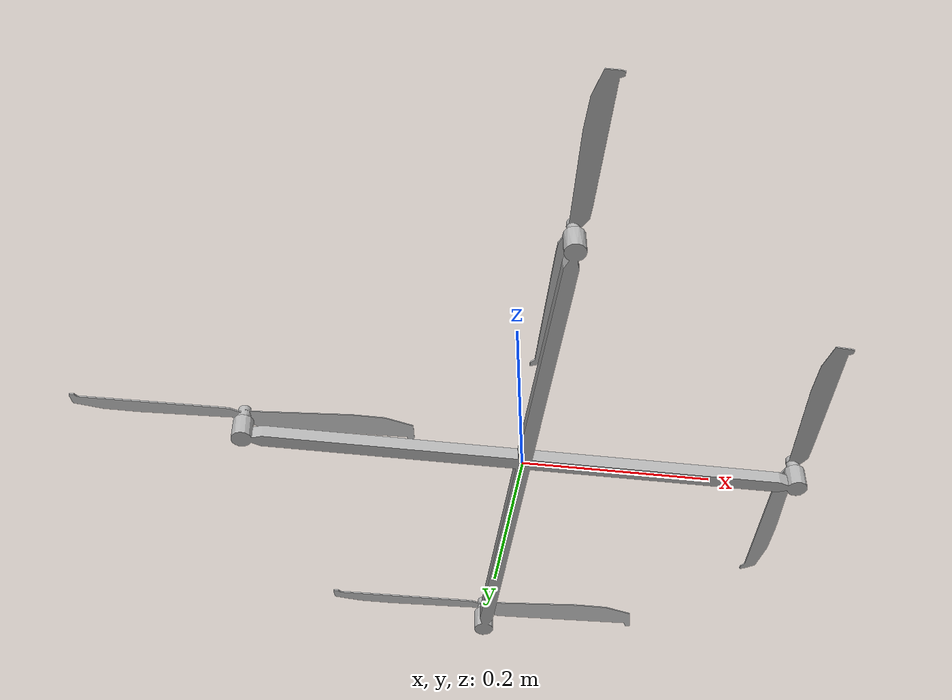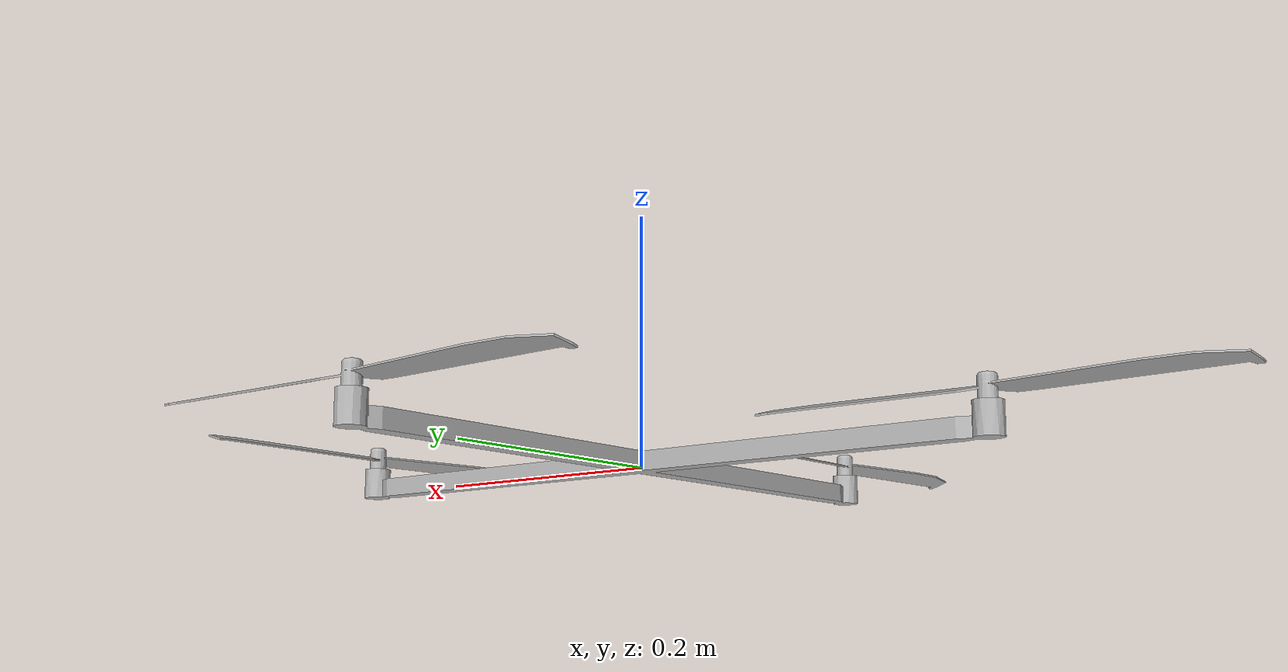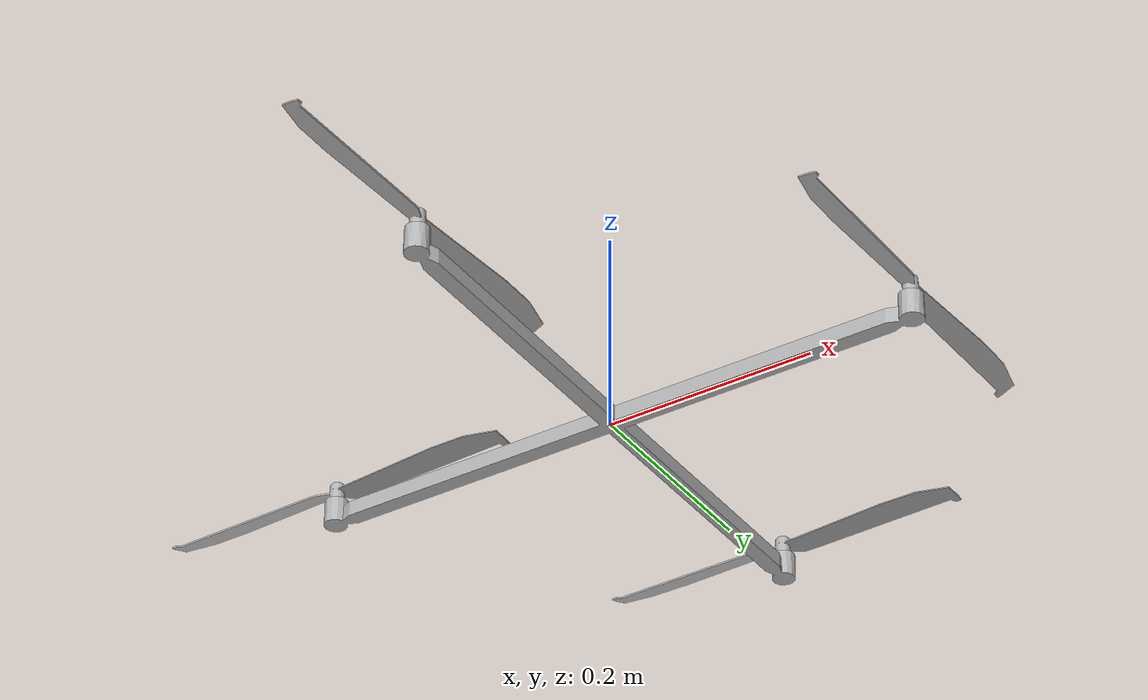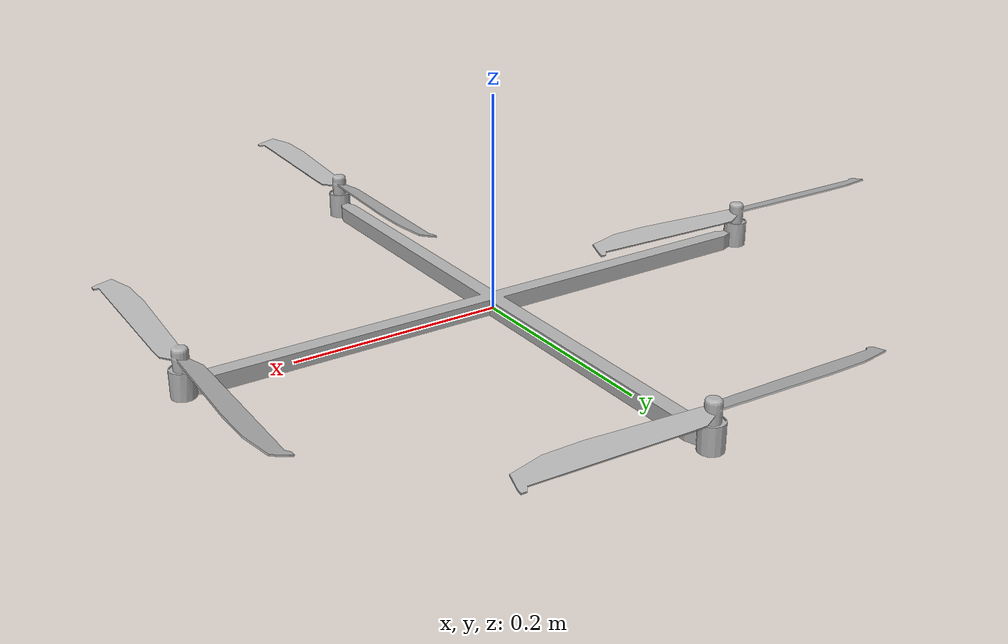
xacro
<?xml version="1.0" ?>
<robot name="custom_f450" xmlns:xacro="http://www.ros.org/wiki/xacro">

<xacro:include filename="$(find mpu6050_serial_to_imu)/urdf/materials.xacro" />
<xacro:include filename="$(find mpu6050_serial_to_imu)/urdf/custom_f450.trans" />
<xacro:include filename="$(find mpu6050_serial_to_imu)/urdf/custom_f450.gazebo" />
<link name="imu_link">
  <inertial>
    <origin xyz="0.001570974601766477 -0.0003086091973574034 0.005590903282009929" rpy="0 0 0"/>
    <mass value="0.776410855386074"/>
    <inertia ixx="0.013488" iyy="0.013488" izz="0.026937" ixy="0.0" iyz="0.0" ixz="-0.0"/>
  </inertial>
  <visual>
    <origin xyz="0 0 0" rpy="0 0 0"/>
    <geometry>
      <mesh filename="package://mpu6050_serial_to_imu/meshes/imu_link.stl" scale="0.001 0.001 0.001"/>
    </geometry>
    <material name="silver"/>
  </visual>
  <collision>
    <origin xyz="0 0 0" rpy="0 0 0"/>
    <geometry>
      <mesh filename="package://mpu6050_serial_to_imu/meshes/imu_link.stl" scale="0.001 0.001 0.001"/>
    </geometry>
  </collision>
</link>

<link name="pro1_1_1">
  <inertial>
    <origin xyz="3.4462596326667594e-07 3.9080264854567896e-07 0.01008648152911543" rpy="0 0 0"/>
    <mass value="0.014398632505168436"/>
    <inertia ixx="1e-06" iyy="0.000123" izz="0.000124" ixy="0.0" iyz="0.0" ixz="-0.0"/>
  </inertial>
  <visual>
    <origin xyz="0.293928 0.000309 -0.021504" rpy="0 0 0"/>
    <geometry>
      <mesh filename="package://mpu6050_serial_to_imu/meshes/pro1_1_1.stl" scale="0.001 0.001 0.001"/>
    </geometry>
    <material name="silver"/>
  </visual>
  <collision>
    <origin xyz="0.293928 0.000309 -0.021504" rpy="0 0 0"/>
    <geometry>
      <mesh filename="package://mpu6050_serial_to_imu/meshes/pro1_1_1.stl" scale="0.001 0.001 0.001"/>
    </geometry>
  </collision>
</link>

<link name="pro4_1_1">
  <inertial>
    <origin xyz="-2.5398240060354668e-08 -2.3917316110955156e-07 0.010086481529116575" rpy="0 0 0"/>
    <mass value="0.014398632505168407"/>
    <inertia ixx="0.000123" iyy="1e-06" izz="0.000124" ixy="-0.0" iyz="-0.0" ixz="0.0"/>
  </inertial>
  <visual>
    <origin xyz="-0.001571 0.295807 -0.021504" rpy="0 0 0"/>
    <geometry>
      <mesh filename="package://mpu6050_serial_to_imu/meshes/pro4_1_1.stl" scale="0.001 0.001 0.001"/>
    </geometry>
    <material name="silver"/>
  </visual>
  <collision>
    <origin xyz="-0.001571 0.295807 -0.021504" rpy="0 0 0"/>
    <geometry>
      <mesh filename="package://mpu6050_serial_to_imu/meshes/pro4_1_1.stl" scale="0.001 0.001 0.001"/>
    </geometry>
  </collision>
</link>

<link name="pro2_1_1">
  <inertial>
    <origin xyz="-3.954224755409186e-07 3.9080269136141906e-07 0.01008648152911638" rpy="0 0 0"/>
    <mass value="0.014398632505168596"/>
    <inertia ixx="0.000123" iyy="1e-06" izz="0.000124" ixy="-0.0" iyz="0.0" ixz="-0.0"/>
  </inertial>
  <visual>
    <origin xyz="-0.29707 0.000309 -0.021504" rpy="0 0 0"/>
    <geometry>
      <mesh filename="package://mpu6050_serial_to_imu/meshes/pro2_1_1.stl" scale="0.001 0.001 0.001"/>
    </geometry>
    <material name="silver"/>
  </visual>
  <collision>
    <origin xyz="-0.29707 0.000309 -0.021504" rpy="0 0 0"/>
    <geometry>
      <mesh filename="package://mpu6050_serial_to_imu/meshes/pro2_1_1.stl" scale="0.001 0.001 0.001"/>
    </geometry>
  </collision>
</link>

<link name="pro3_1_1">
  <inertial>
    <origin xyz="-2.53982826762221e-08 2.077840172143297e-08 0.010086481529115208" rpy="0 0 0"/>
    <mass value="0.014398632505168478"/>
    <inertia ixx="1e-06" iyy="0.000123" izz="0.000124" ixy="0.0" iyz="-0.0" ixz="-0.0"/>
  </inertial>
  <visual>
    <origin xyz="-0.001571 -0.29519 -0.021504" rpy="0 0 0"/>
    <geometry>
      <mesh filename="package://mpu6050_serial_to_imu/meshes/pro3_1_1.stl" scale="0.001 0.001 0.001"/>
    </geometry>
    <material name="silver"/>
  </visual>
  <collision>
    <origin xyz="-0.001571 -0.29519 -0.021504" rpy="0 0 0"/>
    <geometry>
      <mesh filename="package://mpu6050_serial_to_imu/meshes/pro3_1_1.stl" scale="0.001 0.001 0.001"/>
    </geometry>
  </collision>
</link>

<joint name="Rev10" type="continuous">
  <origin xyz="-0.293928 -0.000309 0.021504" rpy="0 0 0"/>
  <parent link="imu_link"/>
  <child link="pro1_1_1"/>
  <axis xyz="-0.0 0.0 1.0"/>
</joint>

<joint name="Rev11" type="continuous">
  <origin xyz="0.001571 -0.295807 0.021504" rpy="0 0 0"/>
  <parent link="imu_link"/>
  <child link="pro4_1_1"/>
  <axis xyz="-0.0 0.0 1.0"/>
</joint>

<joint name="Rev12" type="continuous">
  <origin xyz="0.29707 -0.000309 0.021504" rpy="0 0 0"/>
  <parent link="imu_link"/>
  <child link="pro2_1_1"/>
  <axis xyz="0.0 -0.0 -1.0"/>
</joint>

<joint name="Rev13" type="continuous">
  <origin xyz="0.001571 0.29519 0.021504" rpy="0 0 0"/>
  <parent link="imu_link"/>
  <child link="pro3_1_1"/>
  <axis xyz="-0.0 0.0 1.0"/>
</joint>

</robot>

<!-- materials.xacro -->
<robot name="custom_f450" xmlns:xacro="http://www.ros.org/wiki/xacro" >

<material name="silver">
  <color rgba="0.700 0.700 0.700 1.000"/>
</material>

</robot>

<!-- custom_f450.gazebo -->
<robot name="custom_f450" xmlns:xacro="http://www.ros.org/wiki/xacro" >

<xacro:property name="body_color" value="Gazebo/Silver" />

<gazebo>
  <plugin name="control" filename="libgazebo_ros_control.so"/>
</gazebo>
<gazebo reference="imu_link">
  <material>${body_color}</material>
  <mu1>0.2</mu1>
  <mu2>0.2</mu2>
  <selfCollide>true</selfCollide>
  <gravity>true</gravity>
</gazebo>

<gazebo reference="pro1_1_1">
  <material>${body_color}</material>
  <mu1>0.2</mu1>
  <mu2>0.2</mu2>
  <selfCollide>true</selfCollide>
</gazebo>

<gazebo reference="pro4_1_1">
  <material>${body_color}</material>
  <mu1>0.2</mu1>
  <mu2>0.2</mu2>
  <selfCollide>true</selfCollide>
</gazebo>

<gazebo reference="pro2_1_1">
  <material>${body_color}</material>
  <mu1>0.2</mu1>
  <mu2>0.2</mu2>
  <selfCollide>true</selfCollide>
</gazebo>

<gazebo reference="pro3_1_1">
  <material>${body_color}</material>
  <mu1>0.2</mu1>
  <mu2>0.2</mu2>
  <selfCollide>true</selfCollide>
</gazebo>

</robot>
